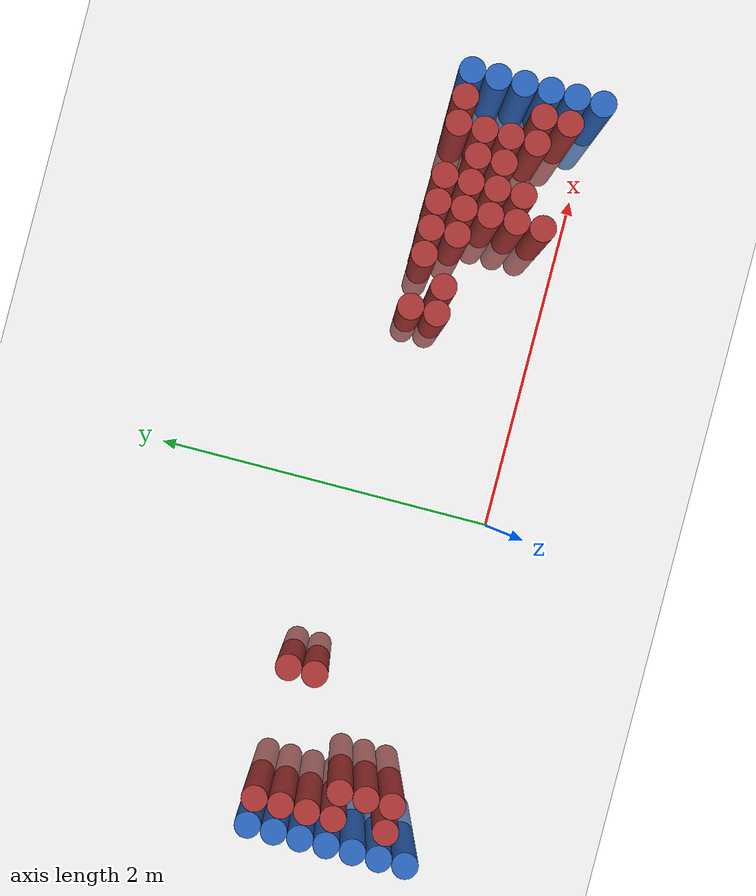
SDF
<sdf version="1.6">
 <world name="default">
  <model name="ground_plane">
   <static>1</static>
   <link name="link">
    <collision name="collision">
     <geometry><plane><normal>0 0 1</normal><size>100 100</size></plane></geometry>
     <surface><friction><ode><mu>100</mu><mu2>50</mu2></ode></friction></surface>
    </collision>
    <visual name="visual">
     <cast_shadows>0</cast_shadows>
     <geometry><plane><normal>0 0 1</normal><size>100 100</size></plane></geometry>
     <material>
      <script><uri>file://media/materials/scripts/gazebo.material</uri><name>Gazebo/Grey</name></script>
     </material>
    </visual>
   </link>
  </model>
  <model name="unit_cylinder_94">
   <static>1</static>
   <pose>2.425000 0.025000 0.000000 0.000000 0.000000 0.000000</pose>
   <link name="link">
    <inertial>
     <mass>1</mass>
     <inertia><ixx>0.145833</ixx><ixy>0</ixy><ixz>0</ixz><iyy>0.145833</iyy><iyz>0</iyz><izz>0.125</izz></inertia>
    </inertial>
    <collision name="collision">
     <geometry><cylinder><radius>0.075000</radius><length>1.5</length></cylinder></geometry>
    </collision>
    <visual name="visual">
     <geometry><cylinder><radius>0.075000</radius><length>1.5</length></cylinder></geometry>
     <material>
      <ambient>0.152000 0.379000 0.720000 1</ambient>
      <diffuse>0.152000 0.379000 0.720000 1</diffuse>
     </material>
     <material>
      <script><name>Gazebo/Grey</name><uri>file://media/materials/scripts/gazebo.material</uri></script>
     </material>
    </visual>
   </link>
  </model>
  <model name="unit_cylinder_95">
   <static>1</static>
   <pose>-1.925000 0.025000 0.000000 0.000000 0.000000 0.000000</pose>
   <link name="link">
    <inertial>
     <mass>1</mass>
     <inertia><ixx>0.145833</ixx><ixy>0</ixy><ixz>0</ixz><iyy>0.145833</iyy><iyz>0</iyz><izz>0.125</izz></inertia>
    </inertial>
    <collision name="collision">
     <geometry><cylinder><radius>0.075000</radius><length>1.5</length></cylinder></geometry>
    </collision>
    <visual name="visual">
     <geometry><cylinder><radius>0.075000</radius><length>1.5</length></cylinder></geometry>
     <material>
      <ambient>0.152000 0.379000 0.720000 1</ambient>
      <diffuse>0.152000 0.379000 0.720000 1</diffuse>
     </material>
     <material>
      <script><name>Gazebo/Grey</name><uri>file://media/materials/scripts/gazebo.material</uri></script>
     </material>
    </visual>
   </link>
  </model>
  <model name="unit_cylinder_96">
   <static>1</static>
   <pose>-1.925000 0.175000 0.000000 0.000000 0.000000 0.000000</pose>
   <link name="link">
    <inertial>
     <mass>1</mass>
     <inertia><ixx>0.145833</ixx><ixy>0</ixy><ixz>0</ixz><iyy>0.145833</iyy><iyz>0</iyz><izz>0.125</izz></inertia>
    </inertial>
    <collision name="collision">
     <geometry><cylinder><radius>0.075000</radius><length>1.5</length></cylinder></geometry>
    </collision>
    <visual name="visual">
     <geometry><cylinder><radius>0.075000</radius><length>1.5</length></cylinder></geometry>
     <material>
      <ambient>0.152000 0.379000 0.720000 1</ambient>
      <diffuse>0.152000 0.379000 0.720000 1</diffuse>
     </material>
     <material>
      <script><name>Gazebo/Grey</name><uri>file://media/materials/scripts/gazebo.material</uri></script>
     </material>
    </visual>
   </link>
  </model>
  <model name="unit_cylinder_97">
   <static>1</static>
   <pose>-1.925000 0.325000 0.000000 0.000000 0.000000 0.000000</pose>
   <link name="link">
    <inertial>
     <mass>1</mass>
     <inertia><ixx>0.145833</ixx><ixy>0</ixy><ixz>0</ixz><iyy>0.145833</iyy><iyz>0</iyz><izz>0.125</izz></inertia>
    </inertial>
    <collision name="collision">
     <geometry><cylinder><radius>0.075000</radius><length>1.5</length></cylinder></geometry>
    </collision>
    <visual name="visual">
     <geometry><cylinder><radius>0.075000</radius><length>1.5</length></cylinder></geometry>
     <material>
      <ambient>0.152000 0.379000 0.720000 1</ambient>
      <diffuse>0.152000 0.379000 0.720000 1</diffuse>
     </material>
     <material>
      <script><name>Gazebo/Grey</name><uri>file://media/materials/scripts/gazebo.material</uri></script>
     </material>
    </visual>
   </link>
  </model>
  <model name="unit_cylinder_98">
   <static>1</static>
   <pose>-1.925000 0.475000 0.000000 0.000000 0.000000 0.000000</pose>
   <link name="link">
    <inertial>
     <mass>1</mass>
     <inertia><ixx>0.145833</ixx><ixy>0</ixy><ixz>0</ixz><iyy>0.145833</iyy><iyz>0</iyz><izz>0.125</izz></inertia>
    </inertial>
    <collision name="collision">
     <geometry><cylinder><radius>0.075000</radius><length>1.5</length></cylinder></geometry>
    </collision>
    <visual name="visual">
     <geometry><cylinder><radius>0.075000</radius><length>1.5</length></cylinder></geometry>
     <material>
      <ambient>0.152000 0.379000 0.720000 1</ambient>
      <diffuse>0.152000 0.379000 0.720000 1</diffuse>
     </material>
     <material>
      <script><name>Gazebo/Grey</name><uri>file://media/materials/scripts/gazebo.material</uri></script>
     </material>
    </visual>
   </link>
  </model>
  <model name="unit_cylinder_99">
   <static>1</static>
   <pose>-1.925000 0.625000 0.000000 0.000000 0.000000 0.000000</pose>
   <link name="link">
    <inertial>
     <mass>1</mass>
     <inertia><ixx>0.145833</ixx><ixy>0</ixy><ixz>0</ixz><iyy>0.145833</iyy><iyz>0</iyz><izz>0.125</izz></inertia>
    </inertial>
    <collision name="collision">
     <geometry><cylinder><radius>0.075000</radius><length>1.5</length></cylinder></geometry>
    </collision>
    <visual name="visual">
     <geometry><cylinder><radius>0.075000</radius><length>1.5</length></cylinder></geometry>
     <material>
      <ambient>0.152000 0.379000 0.720000 1</ambient>
      <diffuse>0.152000 0.379000 0.720000 1</diffuse>
     </material>
     <material>
      <script><name>Gazebo/Grey</name><uri>file://media/materials/scripts/gazebo.material</uri></script>
     </material>
    </visual>
   </link>
  </model>
  <model name="unit_cylinder_100">
   <static>1</static>
   <pose>-1.925000 0.775000 0.000000 0.000000 0.000000 0.000000</pose>
   <link name="link">
    <inertial>
     <mass>1</mass>
     <inertia><ixx>0.145833</ixx><ixy>0</ixy><ixz>0</ixz><iyy>0.145833</iyy><iyz>0</iyz><izz>0.125</izz></inertia>
    </inertial>
    <collision name="collision">
     <geometry><cylinder><radius>0.075000</radius><length>1.5</length></cylinder></geometry>
    </collision>
    <visual name="visual">
     <geometry><cylinder><radius>0.075000</radius><length>1.5</length></cylinder></geometry>
     <material>
      <ambient>0.152000 0.379000 0.720000 1</ambient>
      <diffuse>0.152000 0.379000 0.720000 1</diffuse>
     </material>
     <material>
      <script><name>Gazebo/Grey</name><uri>file://media/materials/scripts/gazebo.material</uri></script>
     </material>
    </visual>
   </link>
  </model>
  <model name="unit_cylinder_101">
   <static>1</static>
   <pose>-1.925000 0.925000 0.000000 0.000000 0.000000 0.000000</pose>
   <link name="link">
    <inertial>
     <mass>1</mass>
     <inertia><ixx>0.145833</ixx><ixy>0</ixy><ixz>0</ixz><iyy>0.145833</iyy><iyz>0</iyz><izz>0.125</izz></inertia>
    </inertial>
    <collision name="collision">
     <geometry><cylinder><radius>0.075000</radius><length>1.5</length></cylinder></geometry>
    </collision>
    <visual name="visual">
     <geometry><cylinder><radius>0.075000</radius><length>1.5</length></cylinder></geometry>
     <material>
      <ambient>0.152000 0.379000 0.720000 1</ambient>
      <diffuse>0.152000 0.379000 0.720000 1</diffuse>
     </material>
     <material>
      <script><name>Gazebo/Grey</name><uri>file://media/materials/scripts/gazebo.material</uri></script>
     </material>
    </visual>
   </link>
  </model>
  <model name="unit_cylinder_126">
   <static>1</static>
   <pose>-1.775000 0.175000 0.000000 0.000000 0.000000 0.000000</pose>
   <link name="link">
    <inertial>
     <mass>1</mass>
     <inertia><ixx>0.145833</ixx><ixy>0</ixy><ixz>0</ixz><iyy>0.145833</iyy><iyz>0</iyz><izz>0.125</izz></inertia>
    </inertial>
    <collision name="collision">
     <geometry><cylinder><radius>0.075000</radius><length>1.5</length></cylinder></geometry>
    </collision>
    <visual name="visual">
     <geometry><cylinder><radius>0.075000</radius><length>1.5</length></cylinder></geometry>
     <material>
      <ambient>0.648000 0.192000 0.192000 1</ambient>
      <diffuse>0.648000 0.192000 0.192000 1</diffuse>
     </material>
     <material>
      <script><name>Gazebo/Grey</name><uri>file://media/materials/scripts/gazebo.material</uri></script>
     </material>
    </visual>
   </link>
  </model>
  <model name="unit_cylinder_127">
   <static>1</static>
   <pose>-1.775000 0.475000 0.000000 0.000000 0.000000 0.000000</pose>
   <link name="link">
    <inertial>
     <mass>1</mass>
     <inertia><ixx>0.145833</ixx><ixy>0</ixy><ixz>0</ixz><iyy>0.145833</iyy><iyz>0</iyz><izz>0.125</izz></inertia>
    </inertial>
    <collision name="collision">
     <geometry><cylinder><radius>0.075000</radius><length>1.5</length></cylinder></geometry>
    </collision>
    <visual name="visual">
     <geometry><cylinder><radius>0.075000</radius><length>1.5</length></cylinder></geometry>
     <material>
      <ambient>0.648000 0.192000 0.192000 1</ambient>
      <diffuse>0.648000 0.192000 0.192000 1</diffuse>
     </material>
     <material>
      <script><name>Gazebo/Grey</name><uri>file://media/materials/scripts/gazebo.material</uri></script>
     </material>
    </visual>
   </link>
  </model>
  <model name="unit_cylinder_128">
   <static>1</static>
   <pose>-1.775000 0.625000 0.000000 0.000000 0.000000 0.000000</pose>
   <link name="link">
    <inertial>
     <mass>1</mass>
     <inertia><ixx>0.145833</ixx><ixy>0</ixy><ixz>0</ixz><iyy>0.145833</iyy><iyz>0</iyz><izz>0.125</izz></inertia>
    </inertial>
    <collision name="collision">
     <geometry><cylinder><radius>0.075000</radius><length>1.5</length></cylinder></geometry>
    </collision>
    <visual name="visual">
     <geometry><cylinder><radius>0.075000</radius><length>1.5</length></cylinder></geometry>
     <material>
      <ambient>0.648000 0.192000 0.192000 1</ambient>
      <diffuse>0.648000 0.192000 0.192000 1</diffuse>
     </material>
     <material>
      <script><name>Gazebo/Grey</name><uri>file://media/materials/scripts/gazebo.material</uri></script>
     </material>
    </visual>
   </link>
  </model>
  <model name="unit_cylinder_129">
   <static>1</static>
   <pose>-1.775000 0.775000 0.000000 0.000000 0.000000 0.000000</pose>
   <link name="link">
    <inertial>
     <mass>1</mass>
     <inertia><ixx>0.145833</ixx><ixy>0</ixy><ixz>0</ixz><iyy>0.145833</iyy><iyz>0</iyz><izz>0.125</izz></inertia>
    </inertial>
    <collision name="collision">
     <geometry><cylinder><radius>0.075000</radius><length>1.5</length></cylinder></geometry>
    </collision>
    <visual name="visual">
     <geometry><cylinder><radius>0.075000</radius><length>1.5</length></cylinder></geometry>
     <material>
      <ambient>0.648000 0.192000 0.192000 1</ambient>
      <diffuse>0.648000 0.192000 0.192000 1</diffuse>
     </material>
     <material>
      <script><name>Gazebo/Grey</name><uri>file://media/materials/scripts/gazebo.material</uri></script>
     </material>
    </visual>
   </link>
  </model>
  <model name="unit_cylinder_130">
   <static>1</static>
   <pose>-1.775000 0.925000 0.000000 0.000000 0.000000 0.000000</pose>
   <link name="link">
    <inertial>
     <mass>1</mass>
     <inertia><ixx>0.145833</ixx><ixy>0</ixy><ixz>0</ixz><iyy>0.145833</iyy><iyz>0</iyz><izz>0.125</izz></inertia>
    </inertial>
    <collision name="collision">
     <geometry><cylinder><radius>0.075000</radius><length>1.5</length></cylinder></geometry>
    </collision>
    <visual name="visual">
     <geometry><cylinder><radius>0.075000</radius><length>1.5</length></cylinder></geometry>
     <material>
      <ambient>0.648000 0.192000 0.192000 1</ambient>
      <diffuse>0.648000 0.192000 0.192000 1</diffuse>
     </material>
     <material>
      <script><name>Gazebo/Grey</name><uri>file://media/materials/scripts/gazebo.material</uri></script>
     </material>
    </visual>
   </link>
  </model>
  <model name="unit_cylinder_144">
   <static>1</static>
   <pose>-1.625000 0.175000 0.000000 0.000000 0.000000 0.000000</pose>
   <link name="link">
    <inertial>
     <mass>1</mass>
     <inertia><ixx>0.145833</ixx><ixy>0</ixy><ixz>0</ixz><iyy>0.145833</iyy><iyz>0</iyz><izz>0.125</izz></inertia>
    </inertial>
    <collision name="collision">
     <geometry><cylinder><radius>0.075000</radius><length>1.5</length></cylinder></geometry>
    </collision>
    <visual name="visual">
     <geometry><cylinder><radius>0.075000</radius><length>1.5</length></cylinder></geometry>
     <material>
      <ambient>0.648000 0.192000 0.192000 1</ambient>
      <diffuse>0.648000 0.192000 0.192000 1</diffuse>
     </material>
     <material>
      <script><name>Gazebo/Grey</name><uri>file://media/materials/scripts/gazebo.material</uri></script>
     </material>
    </visual>
   </link>
  </model>
  <model name="unit_cylinder_145">
   <static>1</static>
   <pose>-1.625000 0.325000 0.000000 0.000000 0.000000 0.000000</pose>
   <link name="link">
    <inertial>
     <mass>1</mass>
     <inertia><ixx>0.145833</ixx><ixy>0</ixy><ixz>0</ixz><iyy>0.145833</iyy><iyz>0</iyz><izz>0.125</izz></inertia>
    </inertial>
    <collision name="collision">
     <geometry><cylinder><radius>0.075000</radius><length>1.5</length></cylinder></geometry>
    </collision>
    <visual name="visual">
     <geometry><cylinder><radius>0.075000</radius><length>1.5</length></cylinder></geometry>
     <material>
      <ambient>0.648000 0.192000 0.192000 1</ambient>
      <diffuse>0.648000 0.192000 0.192000 1</diffuse>
     </material>
     <material>
      <script><name>Gazebo/Grey</name><uri>file://media/materials/scripts/gazebo.material</uri></script>
     </material>
    </visual>
   </link>
  </model>
  <model name="unit_cylinder_146">
   <static>1</static>
   <pose>-1.625000 0.475000 0.000000 0.000000 0.000000 0.000000</pose>
   <link name="link">
    <inertial>
     <mass>1</mass>
     <inertia><ixx>0.145833</ixx><ixy>0</ixy><ixz>0</ixz><iyy>0.145833</iyy><iyz>0</iyz><izz>0.125</izz></inertia>
    </inertial>
    <collision name="collision">
     <geometry><cylinder><radius>0.075000</radius><length>1.5</length></cylinder></geometry>
    </collision>
    <visual name="visual">
     <geometry><cylinder><radius>0.075000</radius><length>1.5</length></cylinder></geometry>
     <material>
      <ambient>0.648000 0.192000 0.192000 1</ambient>
      <diffuse>0.648000 0.192000 0.192000 1</diffuse>
     </material>
     <material>
      <script><name>Gazebo/Grey</name><uri>file://media/materials/scripts/gazebo.material</uri></script>
     </material>
    </visual>
   </link>
  </model>
  <model name="unit_cylinder_153">
   <static>1</static>
   <pose>-1.025000 0.775000 0.000000 0.000000 0.000000 0.000000</pose>
   <link name="link">
    <inertial>
     <mass>1</mass>
     <inertia><ixx>0.145833</ixx><ixy>0</ixy><ixz>0</ixz><iyy>0.145833</iyy><iyz>0</iyz><izz>0.125</izz></inertia>
    </inertial>
    <collision name="collision">
     <geometry><cylinder><radius>0.075000</radius><length>1.5</length></cylinder></geometry>
    </collision>
    <visual name="visual">
     <geometry><cylinder><radius>0.075000</radius><length>1.5</length></cylinder></geometry>
     <material>
      <ambient>0.648000 0.192000 0.192000 1</ambient>
      <diffuse>0.648000 0.192000 0.192000 1</diffuse>
     </material>
     <material>
      <script><name>Gazebo/Grey</name><uri>file://media/materials/scripts/gazebo.material</uri></script>
     </material>
    </visual>
   </link>
  </model>
  <model name="unit_cylinder_154">
   <static>1</static>
   <pose>-1.025000 0.925000 0.000000 0.000000 0.000000 0.000000</pose>
   <link name="link">
    <inertial>
     <mass>1</mass>
     <inertia><ixx>0.145833</ixx><ixy>0</ixy><ixz>0</ixz><iyy>0.145833</iyy><iyz>0</iyz><izz>0.125</izz></inertia>
    </inertial>
    <collision name="collision">
     <geometry><cylinder><radius>0.075000</radius><length>1.5</length></cylinder></geometry>
    </collision>
    <visual name="visual">
     <geometry><cylinder><radius>0.075000</radius><length>1.5</length></cylinder></geometry>
     <material>
      <ambient>0.648000 0.192000 0.192000 1</ambient>
      <diffuse>0.648000 0.192000 0.192000 1</diffuse>
     </material>
     <material>
      <script><name>Gazebo/Grey</name><uri>file://media/materials/scripts/gazebo.material</uri></script>
     </material>
    </visual>
   </link>
  </model>
  <model name="unit_cylinder_195">
   <static>1</static>
   <pose>1.075000 0.625000 0.000000 0.000000 0.000000 0.000000</pose>
   <link name="link">
    <inertial>
     <mass>1</mass>
     <inertia><ixx>0.145833</ixx><ixy>0</ixy><ixz>0</ixz><iyy>0.145833</iyy><iyz>0</iyz><izz>0.125</izz></inertia>
    </inertial>
    <collision name="collision">
     <geometry><cylinder><radius>0.075000</radius><length>1.5</length></cylinder></geometry>
    </collision>
    <visual name="visual">
     <geometry><cylinder><radius>0.075000</radius><length>1.5</length></cylinder></geometry>
     <material>
      <ambient>0.648000 0.192000 0.192000 1</ambient>
      <diffuse>0.648000 0.192000 0.192000 1</diffuse>
     </material>
     <material>
      <script><name>Gazebo/Grey</name><uri>file://media/materials/scripts/gazebo.material</uri></script>
     </material>
    </visual>
   </link>
  </model>
  <model name="unit_cylinder_196">
   <static>1</static>
   <pose>1.075000 0.775000 0.000000 0.000000 0.000000 0.000000</pose>
   <link name="link">
    <inertial>
     <mass>1</mass>
     <inertia><ixx>0.145833</ixx><ixy>0</ixy><ixz>0</ixz><iyy>0.145833</iyy><iyz>0</iyz><izz>0.125</izz></inertia>
    </inertial>
    <collision name="collision">
     <geometry><cylinder><radius>0.075000</radius><length>1.5</length></cylinder></geometry>
    </collision>
    <visual name="visual">
     <geometry><cylinder><radius>0.075000</radius><length>1.5</length></cylinder></geometry>
     <material>
      <ambient>0.648000 0.192000 0.192000 1</ambient>
      <diffuse>0.648000 0.192000 0.192000 1</diffuse>
     </material>
     <material>
      <script><name>Gazebo/Grey</name><uri>file://media/materials/scripts/gazebo.material</uri></script>
     </material>
    </visual>
   </link>
  </model>
  <model name="unit_cylinder_197">
   <static>1</static>
   <pose>1.225000 0.625000 0.000000 0.000000 0.000000 0.000000</pose>
   <link name="link">
    <inertial>
     <mass>1</mass>
     <inertia><ixx>0.145833</ixx><ixy>0</ixy><ixz>0</ixz><iyy>0.145833</iyy><iyz>0</iyz><izz>0.125</izz></inertia>
    </inertial>
    <collision name="collision">
     <geometry><cylinder><radius>0.075000</radius><length>1.5</length></cylinder></geometry>
    </collision>
    <visual name="visual">
     <geometry><cylinder><radius>0.075000</radius><length>1.5</length></cylinder></geometry>
     <material>
      <ambient>0.648000 0.192000 0.192000 1</ambient>
      <diffuse>0.648000 0.192000 0.192000 1</diffuse>
     </material>
     <material>
      <script><name>Gazebo/Grey</name><uri>file://media/materials/scripts/gazebo.material</uri></script>
     </material>
    </visual>
   </link>
  </model>
  <model name="unit_cylinder_200">
   <static>1</static>
   <pose>1.375000 0.775000 0.000000 0.000000 0.000000 0.000000</pose>
   <link name="link">
    <inertial>
     <mass>1</mass>
     <inertia><ixx>0.145833</ixx><ixy>0</ixy><ixz>0</ixz><iyy>0.145833</iyy><iyz>0</iyz><izz>0.125</izz></inertia>
    </inertial>
    <collision name="collision">
     <geometry><cylinder><radius>0.075000</radius><length>1.5</length></cylinder></geometry>
    </collision>
    <visual name="visual">
     <geometry><cylinder><radius>0.075000</radius><length>1.5</length></cylinder></geometry>
     <material>
      <ambient>0.648000 0.192000 0.192000 1</ambient>
      <diffuse>0.648000 0.192000 0.192000 1</diffuse>
     </material>
     <material>
      <script><name>Gazebo/Grey</name><uri>file://media/materials/scripts/gazebo.material</uri></script>
     </material>
    </visual>
   </link>
  </model>
  <model name="unit_cylinder_202">
   <static>1</static>
   <pose>1.525000 0.625000 0.000000 0.000000 0.000000 0.000000</pose>
   <link name="link">
    <inertial>
     <mass>1</mass>
     <inertia><ixx>0.145833</ixx><ixy>0</ixy><ixz>0</ixz><iyy>0.145833</iyy><iyz>0</iyz><izz>0.125</izz></inertia>
    </inertial>
    <collision name="collision">
     <geometry><cylinder><radius>0.075000</radius><length>1.5</length></cylinder></geometry>
    </collision>
    <visual name="visual">
     <geometry><cylinder><radius>0.075000</radius><length>1.5</length></cylinder></geometry>
     <material>
      <ambient>0.648000 0.192000 0.192000 1</ambient>
      <diffuse>0.648000 0.192000 0.192000 1</diffuse>
     </material>
     <material>
      <script><name>Gazebo/Grey</name><uri>file://media/materials/scripts/gazebo.material</uri></script>
     </material>
    </visual>
   </link>
  </model>
  <model name="unit_cylinder_203">
   <static>1</static>
   <pose>1.525000 0.775000 0.000000 0.000000 0.000000 0.000000</pose>
   <link name="link">
    <inertial>
     <mass>1</mass>
     <inertia><ixx>0.145833</ixx><ixy>0</ixy><ixz>0</ixz><iyy>0.145833</iyy><iyz>0</iyz><izz>0.125</izz></inertia>
    </inertial>
    <collision name="collision">
     <geometry><cylinder><radius>0.075000</radius><length>1.5</length></cylinder></geometry>
    </collision>
    <visual name="visual">
     <geometry><cylinder><radius>0.075000</radius><length>1.5</length></cylinder></geometry>
     <material>
      <ambient>0.648000 0.192000 0.192000 1</ambient>
      <diffuse>0.648000 0.192000 0.192000 1</diffuse>
     </material>
     <material>
      <script><name>Gazebo/Grey</name><uri>file://media/materials/scripts/gazebo.material</uri></script>
     </material>
    </visual>
   </link>
  </model>
  <model name="unit_cylinder_205">
   <static>1</static>
   <pose>1.675000 0.175000 0.000000 0.000000 0.000000 0.000000</pose>
   <link name="link">
    <inertial>
     <mass>1</mass>
     <inertia><ixx>0.145833</ixx><ixy>0</ixy><ixz>0</ixz><iyy>0.145833</iyy><iyz>0</iyz><izz>0.125</izz></inertia>
    </inertial>
    <collision name="collision">
     <geometry><cylinder><radius>0.075000</radius><length>1.5</length></cylinder></geometry>
    </collision>
    <visual name="visual">
     <geometry><cylinder><radius>0.075000</radius><length>1.5</length></cylinder></geometry>
     <material>
      <ambient>0.648000 0.192000 0.192000 1</ambient>
      <diffuse>0.648000 0.192000 0.192000 1</diffuse>
     </material>
     <material>
      <script><name>Gazebo/Grey</name><uri>file://media/materials/scripts/gazebo.material</uri></script>
     </material>
    </visual>
   </link>
  </model>
  <model name="unit_cylinder_206">
   <static>1</static>
   <pose>1.675000 0.325000 0.000000 0.000000 0.000000 0.000000</pose>
   <link name="link">
    <inertial>
     <mass>1</mass>
     <inertia><ixx>0.145833</ixx><ixy>0</ixy><ixz>0</ixz><iyy>0.145833</iyy><iyz>0</iyz><izz>0.125</izz></inertia>
    </inertial>
    <collision name="collision">
     <geometry><cylinder><radius>0.075000</radius><length>1.5</length></cylinder></geometry>
    </collision>
    <visual name="visual">
     <geometry><cylinder><radius>0.075000</radius><length>1.5</length></cylinder></geometry>
     <material>
      <ambient>0.648000 0.192000 0.192000 1</ambient>
      <diffuse>0.648000 0.192000 0.192000 1</diffuse>
     </material>
     <material>
      <script><name>Gazebo/Grey</name><uri>file://media/materials/scripts/gazebo.material</uri></script>
     </material>
    </visual>
   </link>
  </model>
  <model name="unit_cylinder_207">
   <static>1</static>
   <pose>1.675000 0.475000 0.000000 0.000000 0.000000 0.000000</pose>
   <link name="link">
    <inertial>
     <mass>1</mass>
     <inertia><ixx>0.145833</ixx><ixy>0</ixy><ixz>0</ixz><iyy>0.145833</iyy><iyz>0</iyz><izz>0.125</izz></inertia>
    </inertial>
    <collision name="collision">
     <geometry><cylinder><radius>0.075000</radius><length>1.5</length></cylinder></geometry>
    </collision>
    <visual name="visual">
     <geometry><cylinder><radius>0.075000</radius><length>1.5</length></cylinder></geometry>
     <material>
      <ambient>0.648000 0.192000 0.192000 1</ambient>
      <diffuse>0.648000 0.192000 0.192000 1</diffuse>
     </material>
     <material>
      <script><name>Gazebo/Grey</name><uri>file://media/materials/scripts/gazebo.material</uri></script>
     </material>
    </visual>
   </link>
  </model>
  <model name="unit_cylinder_208">
   <static>1</static>
   <pose>1.675000 0.625000 0.000000 0.000000 0.000000 0.000000</pose>
   <link name="link">
    <inertial>
     <mass>1</mass>
     <inertia><ixx>0.145833</ixx><ixy>0</ixy><ixz>0</ixz><iyy>0.145833</iyy><iyz>0</iyz><izz>0.125</izz></inertia>
    </inertial>
    <collision name="collision">
     <geometry><cylinder><radius>0.075000</radius><length>1.5</length></cylinder></geometry>
    </collision>
    <visual name="visual">
     <geometry><cylinder><radius>0.075000</radius><length>1.5</length></cylinder></geometry>
     <material>
      <ambient>0.648000 0.192000 0.192000 1</ambient>
      <diffuse>0.648000 0.192000 0.192000 1</diffuse>
     </material>
     <material>
      <script><name>Gazebo/Grey</name><uri>file://media/materials/scripts/gazebo.material</uri></script>
     </material>
    </visual>
   </link>
  </model>
  <model name="unit_cylinder_209">
   <static>1</static>
   <pose>1.675000 0.775000 0.000000 0.000000 0.000000 0.000000</pose>
   <link name="link">
    <inertial>
     <mass>1</mass>
     <inertia><ixx>0.145833</ixx><ixy>0</ixy><ixz>0</ixz><iyy>0.145833</iyy><iyz>0</iyz><izz>0.125</izz></inertia>
    </inertial>
    <collision name="collision">
     <geometry><cylinder><radius>0.075000</radius><length>1.5</length></cylinder></geometry>
    </collision>
    <visual name="visual">
     <geometry><cylinder><radius>0.075000</radius><length>1.5</length></cylinder></geometry>
     <material>
      <ambient>0.648000 0.192000 0.192000 1</ambient>
      <diffuse>0.648000 0.192000 0.192000 1</diffuse>
     </material>
     <material>
      <script><name>Gazebo/Grey</name><uri>file://media/materials/scripts/gazebo.material</uri></script>
     </material>
    </visual>
   </link>
  </model>
  <model name="unit_cylinder_211">
   <static>1</static>
   <pose>1.825000 0.325000 0.000000 0.000000 0.000000 0.000000</pose>
   <link name="link">
    <inertial>
     <mass>1</mass>
     <inertia><ixx>0.145833</ixx><ixy>0</ixy><ixz>0</ixz><iyy>0.145833</iyy><iyz>0</iyz><izz>0.125</izz></inertia>
    </inertial>
    <collision name="collision">
     <geometry><cylinder><radius>0.075000</radius><length>1.5</length></cylinder></geometry>
    </collision>
    <visual name="visual">
     <geometry><cylinder><radius>0.075000</radius><length>1.5</length></cylinder></geometry>
     <material>
      <ambient>0.648000 0.192000 0.192000 1</ambient>
      <diffuse>0.648000 0.192000 0.192000 1</diffuse>
     </material>
     <material>
      <script><name>Gazebo/Grey</name><uri>file://media/materials/scripts/gazebo.material</uri></script>
     </material>
    </visual>
   </link>
  </model>
  <model name="unit_cylinder_212">
   <static>1</static>
   <pose>1.825000 0.475000 0.000000 0.000000 0.000000 0.000000</pose>
   <link name="link">
    <inertial>
     <mass>1</mass>
     <inertia><ixx>0.145833</ixx><ixy>0</ixy><ixz>0</ixz><iyy>0.145833</iyy><iyz>0</iyz><izz>0.125</izz></inertia>
    </inertial>
    <collision name="collision">
     <geometry><cylinder><radius>0.075000</radius><length>1.5</length></cylinder></geometry>
    </collision>
    <visual name="visual">
     <geometry><cylinder><radius>0.075000</radius><length>1.5</length></cylinder></geometry>
     <material>
      <ambient>0.648000 0.192000 0.192000 1</ambient>
      <diffuse>0.648000 0.192000 0.192000 1</diffuse>
     </material>
     <material>
      <script><name>Gazebo/Grey</name><uri>file://media/materials/scripts/gazebo.material</uri></script>
     </material>
    </visual>
   </link>
  </model>
  <model name="unit_cylinder_213">
   <static>1</static>
   <pose>1.825000 0.625000 0.000000 0.000000 0.000000 0.000000</pose>
   <link name="link">
    <inertial>
     <mass>1</mass>
     <inertia><ixx>0.145833</ixx><ixy>0</ixy><ixz>0</ixz><iyy>0.145833</iyy><iyz>0</iyz><izz>0.125</izz></inertia>
    </inertial>
    <collision name="collision">
     <geometry><cylinder><radius>0.075000</radius><length>1.5</length></cylinder></geometry>
    </collision>
    <visual name="visual">
     <geometry><cylinder><radius>0.075000</radius><length>1.5</length></cylinder></geometry>
     <material>
      <ambient>0.648000 0.192000 0.192000 1</ambient>
      <diffuse>0.648000 0.192000 0.192000 1</diffuse>
     </material>
     <material>
      <script><name>Gazebo/Grey</name><uri>file://media/materials/scripts/gazebo.material</uri></script>
     </material>
    </visual>
   </link>
  </model>
  <model name="unit_cylinder_214">
   <static>1</static>
   <pose>1.825000 0.775000 0.000000 0.000000 0.000000 0.000000</pose>
   <link name="link">
    <inertial>
     <mass>1</mass>
     <inertia><ixx>0.145833</ixx><ixy>0</ixy><ixz>0</ixz><iyy>0.145833</iyy><iyz>0</iyz><izz>0.125</izz></inertia>
    </inertial>
    <collision name="collision">
     <geometry><cylinder><radius>0.075000</radius><length>1.5</length></cylinder></geometry>
    </collision>
    <visual name="visual">
     <geometry><cylinder><radius>0.075000</radius><length>1.5</length></cylinder></geometry>
     <material>
      <ambient>0.648000 0.192000 0.192000 1</ambient>
      <diffuse>0.648000 0.192000 0.192000 1</diffuse>
     </material>
     <material>
      <script><name>Gazebo/Grey</name><uri>file://media/materials/scripts/gazebo.material</uri></script>
     </material>
    </visual>
   </link>
  </model>
  <model name="unit_cylinder_217">
   <static>1</static>
   <pose>1.975000 0.475000 0.000000 0.000000 0.000000 0.000000</pose>
   <link name="link">
    <inertial>
     <mass>1</mass>
     <inertia><ixx>0.145833</ixx><ixy>0</ixy><ixz>0</ixz><iyy>0.145833</iyy><iyz>0</iyz><izz>0.125</izz></inertia>
    </inertial>
    <collision name="collision">
     <geometry><cylinder><radius>0.075000</radius><length>1.5</length></cylinder></geometry>
    </collision>
    <visual name="visual">
     <geometry><cylinder><radius>0.075000</radius><length>1.5</length></cylinder></geometry>
     <material>
      <ambient>0.648000 0.192000 0.192000 1</ambient>
      <diffuse>0.648000 0.192000 0.192000 1</diffuse>
     </material>
     <material>
      <script><name>Gazebo/Grey</name><uri>file://media/materials/scripts/gazebo.material</uri></script>
     </material>
    </visual>
   </link>
  </model>
  <model name="unit_cylinder_218">
   <static>1</static>
   <pose>1.975000 0.625000 0.000000 0.000000 0.000000 0.000000</pose>
   <link name="link">
    <inertial>
     <mass>1</mass>
     <inertia><ixx>0.145833</ixx><ixy>0</ixy><ixz>0</ixz><iyy>0.145833</iyy><iyz>0</iyz><izz>0.125</izz></inertia>
    </inertial>
    <collision name="collision">
     <geometry><cylinder><radius>0.075000</radius><length>1.5</length></cylinder></geometry>
    </collision>
    <visual name="visual">
     <geometry><cylinder><radius>0.075000</radius><length>1.5</length></cylinder></geometry>
     <material>
      <ambient>0.648000 0.192000 0.192000 1</ambient>
      <diffuse>0.648000 0.192000 0.192000 1</diffuse>
     </material>
     <material>
      <script><name>Gazebo/Grey</name><uri>file://media/materials/scripts/gazebo.material</uri></script>
     </material>
    </visual>
   </link>
  </model>
  <model name="unit_cylinder_222">
   <static>1</static>
   <pose>2.125000 0.325000 0.000000 0.000000 0.000000 0.000000</pose>
   <link name="link">
    <inertial>
     <mass>1</mass>
     <inertia><ixx>0.145833</ixx><ixy>0</ixy><ixz>0</ixz><iyy>0.145833</iyy><iyz>0</iyz><izz>0.125</izz></inertia>
    </inertial>
    <collision name="collision">
     <geometry><cylinder><radius>0.075000</radius><length>1.5</length></cylinder></geometry>
    </collision>
    <visual name="visual">
     <geometry><cylinder><radius>0.075000</radius><length>1.5</length></cylinder></geometry>
     <material>
      <ambient>0.648000 0.192000 0.192000 1</ambient>
      <diffuse>0.648000 0.192000 0.192000 1</diffuse>
     </material>
     <material>
      <script><name>Gazebo/Grey</name><uri>file://media/materials/scripts/gazebo.material</uri></script>
     </material>
    </visual>
   </link>
  </model>
  <model name="unit_cylinder_223">
   <static>1</static>
   <pose>2.125000 0.475000 0.000000 0.000000 0.000000 0.000000</pose>
   <link name="link">
    <inertial>
     <mass>1</mass>
     <inertia><ixx>0.145833</ixx><ixy>0</ixy><ixz>0</ixz><iyy>0.145833</iyy><iyz>0</iyz><izz>0.125</izz></inertia>
    </inertial>
    <collision name="collision">
     <geometry><cylinder><radius>0.075000</radius><length>1.5</length></cylinder></geometry>
    </collision>
    <visual name="visual">
     <geometry><cylinder><radius>0.075000</radius><length>1.5</length></cylinder></geometry>
     <material>
      <ambient>0.648000 0.192000 0.192000 1</ambient>
      <diffuse>0.648000 0.192000 0.192000 1</diffuse>
     </material>
     <material>
      <script><name>Gazebo/Grey</name><uri>file://media/materials/scripts/gazebo.material</uri></script>
     </material>
    </visual>
   </link>
  </model>
  <model name="unit_cylinder_224">
   <static>1</static>
   <pose>2.125000 0.625000 0.000000 0.000000 0.000000 0.000000</pose>
   <link name="link">
    <inertial>
     <mass>1</mass>
     <inertia><ixx>0.145833</ixx><ixy>0</ixy><ixz>0</ixz><iyy>0.145833</iyy><iyz>0</iyz><izz>0.125</izz></inertia>
    </inertial>
    <collision name="collision">
     <geometry><cylinder><radius>0.075000</radius><length>1.5</length></cylinder></geometry>
    </collision>
    <visual name="visual">
     <geometry><cylinder><radius>0.075000</radius><length>1.5</length></cylinder></geometry>
     <material>
      <ambient>0.648000 0.192000 0.192000 1</ambient>
      <diffuse>0.648000 0.192000 0.192000 1</diffuse>
     </material>
     <material>
      <script><name>Gazebo/Grey</name><uri>file://media/materials/scripts/gazebo.material</uri></script>
     </material>
    </visual>
   </link>
  </model>
  <model name="unit_cylinder_225">
   <static>1</static>
   <pose>2.125000 0.775000 0.000000 0.000000 0.000000 0.000000</pose>
   <link name="link">
    <inertial>
     <mass>1</mass>
     <inertia><ixx>0.145833</ixx><ixy>0</ixy><ixz>0</ixz><iyy>0.145833</iyy><iyz>0</iyz><izz>0.125</izz></inertia>
    </inertial>
    <collision name="collision">
     <geometry><cylinder><radius>0.075000</radius><length>1.5</length></cylinder></geometry>
    </collision>
    <visual name="visual">
     <geometry><cylinder><radius>0.075000</radius><length>1.5</length></cylinder></geometry>
     <material>
      <ambient>0.648000 0.192000 0.192000 1</ambient>
      <diffuse>0.648000 0.192000 0.192000 1</diffuse>
     </material>
     <material>
      <script><name>Gazebo/Grey</name><uri>file://media/materials/scripts/gazebo.material</uri></script>
     </material>
    </visual>
   </link>
  </model>
  <model name="unit_cylinder_230">
   <static>1</static>
   <pose>2.275000 0.175000 0.000000 0.000000 0.000000 0.000000</pose>
   <link name="link">
    <inertial>
     <mass>1</mass>
     <inertia><ixx>0.145833</ixx><ixy>0</ixy><ixz>0</ixz><iyy>0.145833</iyy><iyz>0</iyz><izz>0.125</izz></inertia>
    </inertial>
    <collision name="collision">
     <geometry><cylinder><radius>0.075000</radius><length>1.5</length></cylinder></geometry>
    </collision>
    <visual name="visual">
     <geometry><cylinder><radius>0.075000</radius><length>1.5</length></cylinder></geometry>
     <material>
      <ambient>0.648000 0.192000 0.192000 1</ambient>
      <diffuse>0.648000 0.192000 0.192000 1</diffuse>
     </material>
     <material>
      <script><name>Gazebo/Grey</name><uri>file://media/materials/scripts/gazebo.material</uri></script>
     </material>
    </visual>
   </link>
  </model>
  <model name="unit_cylinder_231">
   <static>1</static>
   <pose>2.275000 0.325000 0.000000 0.000000 0.000000 0.000000</pose>
   <link name="link">
    <inertial>
     <mass>1</mass>
     <inertia><ixx>0.145833</ixx><ixy>0</ixy><ixz>0</ixz><iyy>0.145833</iyy><iyz>0</iyz><izz>0.125</izz></inertia>
    </inertial>
    <collision name="collision">
     <geometry><cylinder><radius>0.075000</radius><length>1.5</length></cylinder></geometry>
    </collision>
    <visual name="visual">
     <geometry><cylinder><radius>0.075000</radius><length>1.5</length></cylinder></geometry>
     <material>
      <ambient>0.648000 0.192000 0.192000 1</ambient>
      <diffuse>0.648000 0.192000 0.192000 1</diffuse>
     </material>
     <material>
      <script><name>Gazebo/Grey</name><uri>file://media/materials/scripts/gazebo.material</uri></script>
     </material>
    </visual>
   </link>
  </model>
  <model name="unit_cylinder_232">
   <static>1</static>
   <pose>2.275000 0.775000 0.000000 0.000000 0.000000 0.000000</pose>
   <link name="link">
    <inertial>
     <mass>1</mass>
     <inertia><ixx>0.145833</ixx><ixy>0</ixy><ixz>0</ixz><iyy>0.145833</iyy><iyz>0</iyz><izz>0.125</izz></inertia>
    </inertial>
    <collision name="collision">
     <geometry><cylinder><radius>0.075000</radius><length>1.5</length></cylinder></geometry>
    </collision>
    <visual name="visual">
     <geometry><cylinder><radius>0.075000</radius><length>1.5</length></cylinder></geometry>
     <material>
      <ambient>0.648000 0.192000 0.192000 1</ambient>
      <diffuse>0.648000 0.192000 0.192000 1</diffuse>
     </material>
     <material>
      <script><name>Gazebo/Grey</name><uri>file://media/materials/scripts/gazebo.material</uri></script>
     </material>
    </visual>
   </link>
  </model>
  <model name="unit_cylinder_251">
   <static>1</static>
   <pose>2.425000 0.175000 0.000000 0.000000 0.000000 0.000000</pose>
   <link name="link">
    <inertial>
     <mass>1</mass>
     <inertia><ixx>0.145833</ixx><ixy>0</ixy><ixz>0</ixz><iyy>0.145833</iyy><iyz>0</iyz><izz>0.125</izz></inertia>
    </inertial>
    <collision name="collision">
     <geometry><cylinder><radius>0.075000</radius><length>1.5</length></cylinder></geometry>
    </collision>
    <visual name="visual">
     <geometry><cylinder><radius>0.075000</radius><length>1.5</length></cylinder></geometry>
     <material>
      <ambient>0.152000 0.379000 0.720000 1</ambient>
      <diffuse>0.152000 0.379000 0.720000 1</diffuse>
     </material>
     <material>
      <script><name>Gazebo/Grey</name><uri>file://media/materials/scripts/gazebo.material</uri></script>
     </material>
    </visual>
   </link>
  </model>
  <model name="unit_cylinder_252">
   <static>1</static>
   <pose>2.425000 0.325000 0.000000 0.000000 0.000000 0.000000</pose>
   <link name="link">
    <inertial>
     <mass>1</mass>
     <inertia><ixx>0.145833</ixx><ixy>0</ixy><ixz>0</ixz><iyy>0.145833</iyy><iyz>0</iyz><izz>0.125</izz></inertia>
    </inertial>
    <collision name="collision">
     <geometry><cylinder><radius>0.075000</radius><length>1.5</length></cylinder></geometry>
    </collision>
    <visual name="visual">
     <geometry><cylinder><radius>0.075000</radius><length>1.5</length></cylinder></geometry>
     <material>
      <ambient>0.152000 0.379000 0.720000 1</ambient>
      <diffuse>0.152000 0.379000 0.720000 1</diffuse>
     </material>
     <material>
      <script><name>Gazebo/Grey</name><uri>file://media/materials/scripts/gazebo.material</uri></script>
     </material>
    </visual>
   </link>
  </model>
  <model name="unit_cylinder_253">
   <static>1</static>
   <pose>2.425000 0.475000 0.000000 0.000000 0.000000 0.000000</pose>
   <link name="link">
    <inertial>
     <mass>1</mass>
     <inertia><ixx>0.145833</ixx><ixy>0</ixy><ixz>0</ixz><iyy>0.145833</iyy><iyz>0</iyz><izz>0.125</izz></inertia>
    </inertial>
    <collision name="collision">
     <geometry><cylinder><radius>0.075000</radius><length>1.5</length></cylinder></geometry>
    </collision>
    <visual name="visual">
     <geometry><cylinder><radius>0.075000</radius><length>1.5</length></cylinder></geometry>
     <material>
      <ambient>0.152000 0.379000 0.720000 1</ambient>
      <diffuse>0.152000 0.379000 0.720000 1</diffuse>
     </material>
     <material>
      <script><name>Gazebo/Grey</name><uri>file://media/materials/scripts/gazebo.material</uri></script>
     </material>
    </visual>
   </link>
  </model>
  <model name="unit_cylinder_254">
   <static>1</static>
   <pose>2.425000 0.625000 0.000000 0.000000 0.000000 0.000000</pose>
   <link name="link">
    <inertial>
     <mass>1</mass>
     <inertia><ixx>0.145833</ixx><ixy>0</ixy><ixz>0</ixz><iyy>0.145833</iyy><iyz>0</iyz><izz>0.125</izz></inertia>
    </inertial>
    <collision name="collision">
     <geometry><cylinder><radius>0.075000</radius><length>1.5</length></cylinder></geometry>
    </collision>
    <visual name="visual">
     <geometry><cylinder><radius>0.075000</radius><length>1.5</length></cylinder></geometry>
     <material>
      <ambient>0.152000 0.379000 0.720000 1</ambient>
      <diffuse>0.152000 0.379000 0.720000 1</diffuse>
     </material>
     <material>
      <script><name>Gazebo/Grey</name><uri>file://media/materials/scripts/gazebo.material</uri></script>
     </material>
    </visual>
   </link>
  </model>
  <model name="unit_cylinder_255">
   <static>1</static>
   <pose>2.425000 0.775000 0.000000 0.000000 0.000000 0.000000</pose>
   <link name="link">
    <inertial>
     <mass>1</mass>
     <inertia><ixx>0.145833</ixx><ixy>0</ixy><ixz>0</ixz><iyy>0.145833</iyy><iyz>0</iyz><izz>0.125</izz></inertia>
    </inertial>
    <collision name="collision">
     <geometry><cylinder><radius>0.075000</radius><length>1.5</length></cylinder></geometry>
    </collision>
    <visual name="visual">
     <geometry><cylinder><radius>0.075000</radius><length>1.5</length></cylinder></geometry>
     <material>
      <ambient>0.152000 0.379000 0.720000 1</ambient>
      <diffuse>0.152000 0.379000 0.720000 1</diffuse>
     </material>
     <material>
      <script><name>Gazebo/Grey</name><uri>file://media/materials/scripts/gazebo.material</uri></script>
     </material>
    </visual>
   </link>
  </model>
 </world>
</sdf>
